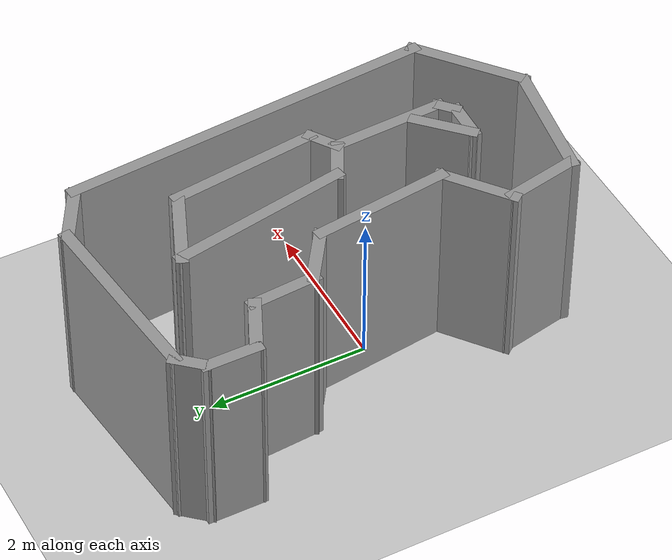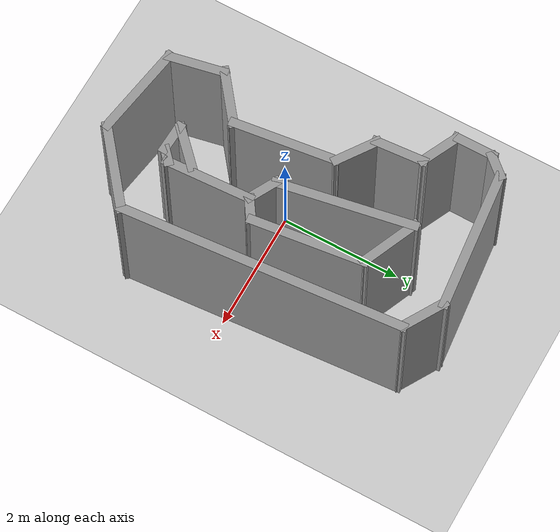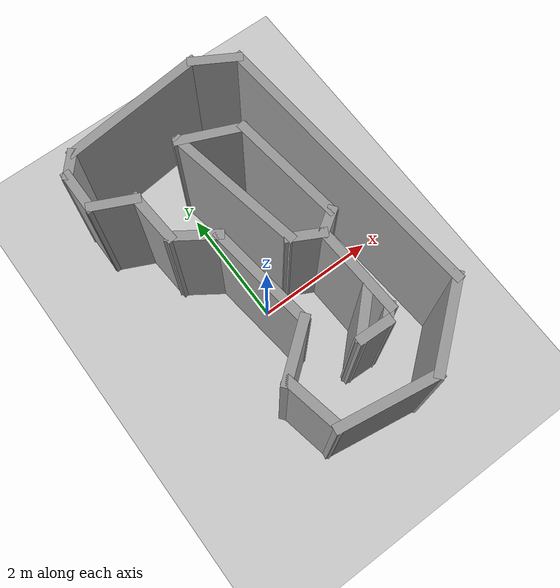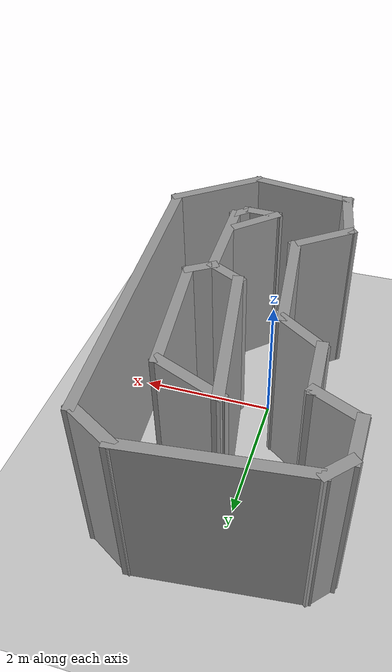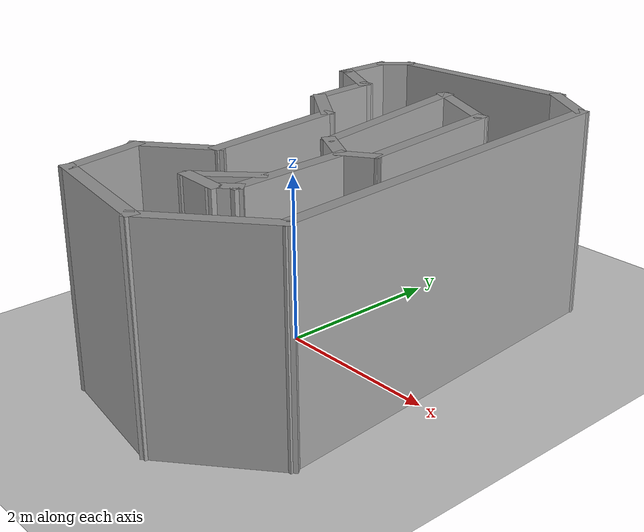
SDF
<sdf version="1.7">
 <world name="default">
  <light name="sun" type="directional">
   <pose>0 0 10 0 -0 0</pose>
   <diffuse>0.8 0.8 0.8 1</diffuse>
   <specular>0.2 0.2 0.2 1</specular>
   <attenuation>
    <range>1000</range>
    <constant>0.9</constant>
    <linear>0.01</linear>
    <quadratic>0.001</quadratic>
   </attenuation>
   <direction>-0.5 0.1 -0.9</direction>
   <spot><inner_angle>0</inner_angle><outer_angle>0</outer_angle><falloff>0</falloff></spot>
  </light>
  <model name="ground_plane">
   <static>1</static>
   <link name="link">
    <collision name="collision">
     <geometry><plane><normal>0 0 1</normal><size>100 100</size></plane></geometry>
     <surface><friction><ode><mu>100</mu><mu2>50</mu2></ode></friction></surface>
    </collision>
    <visual name="visual">
     <cast_shadows>0</cast_shadows>
     <geometry><plane><normal>0 0 1</normal><size>100 100</size></plane></geometry>
     <material>
      <script><uri>file://media/materials/scripts/gazebo.material</uri><name>Gazebo/Grey</name></script>
     </material>
    </visual>
   </link>
  </model>
  <gravity>0 0 -9.8</gravity>
  <magnetic_field>6e-06 2.3e-05 -4.2e-05</magnetic_field>
  <atmosphere type="adiabatic"/>
  <physics type="ode">
   <max_step_size>0.001</max_step_size>
   <real_time_factor>1</real_time_factor>
   <real_time_update_rate>1000</real_time_update_rate>
  </physics>
  <scene><ambient>0.4 0.4 0.4 1</ambient><background>0.7 0.7 0.7 1</background><shadows>1</shadows></scene>
  <audio><device>default</device></audio>
  <spherical_coordinates>
   <surface_model>EARTH_WGS84</surface_model>
   <latitude_deg>0</latitude_deg>
   <longitude_deg>0</longitude_deg>
   <elevation>0</elevation>
   <heading_deg>0</heading_deg>
  </spherical_coordinates>
  <model name="FInal_track">
   <pose>0.256751 0.323224 0 0 -0 0</pose>
   <link name="Wall_0">
    <collision name="Wall_0_Collision">
     <geometry><box><size>2.39491 0.15 2.5</size></box></geometry>
     <pose>0 0 1.25 0 -0 0</pose>
    </collision>
    <visual name="Wall_0_Visual">
     <pose>0 0 1.25 0 -0 0</pose>
     <geometry><box><size>2.39491 0.15 2.5</size></box></geometry>
     <material>
      <script><uri>file://media/materials/scripts/gazebo.material</uri><name>Gazebo/Grey</name></script>
      <ambient>1 1 1 1</ambient>
     </material>
     <meta><layer>0</layer></meta>
    </visual>
    <pose>-0.36939 2.79792 0 0 -0 -3.03535</pose>
   </link>
   <link name="Wall_1">
    <collision name="Wall_1_Collision">
     <geometry><box><size>0.499317 0.15 2.5</size></box></geometry>
     <pose>0 0 1.25 0 -0 0</pose>
    </collision>
    <visual name="Wall_1_Visual">
     <pose>0 0 1.25 0 -0 0</pose>
     <geometry><box><size>0.499317 0.15 2.5</size></box></geometry>
     <material>
      <script><uri>file://media/materials/scripts/gazebo.material</uri><name>Gazebo/Grey</name></script>
      <ambient>1 1 1 1</ambient>
     </material>
     <meta><layer>0</layer></meta>
    </visual>
    <pose>-1.61512 2.54866 0 0 -0 -2.30008</pose>
   </link>
   <link name="Wall_10">
    <collision name="Wall_10_Collision">
     <geometry><box><size>1.54466 0.15 2.5</size></box></geometry>
     <pose>0 0 1.25 0 -0 0</pose>
    </collision>
    <visual name="Wall_10_Visual">
     <pose>0 0 1.25 0 -0 0</pose>
     <geometry><box><size>1.54466 0.15 2.5</size></box></geometry>
     <material>
      <script><uri>file://media/materials/scripts/gazebo.material</uri><name>Gazebo/Grey</name></script>
      <ambient>1 1 1 1</ambient>
     </material>
     <meta><layer>0</layer></meta>
    </visual>
    <pose>1.19115 -2.46049 0 0 -0 0.683393</pose>
   </link>
   <link name="Wall_11">
    <collision name="Wall_11_Collision">
     <geometry><box><size>4.7362 0.15 2.5</size></box></geometry>
     <pose>0 0 1.25 0 -0 0</pose>
    </collision>
    <visual name="Wall_11_Visual">
     <pose>0 0 1.25 0 -0 0</pose>
     <geometry><box><size>4.7362 0.15 2.5</size></box></geometry>
     <material>
      <script><uri>file://media/materials/scripts/gazebo.material</uri><name>Gazebo/Grey</name></script>
      <ambient>1 1 1 1</ambient>
     </material>
     <meta><layer>0</layer></meta>
    </visual>
    <pose>1.54013 0.265958 0 0 -0 1.64873</pose>
   </link>
   <link name="Wall_12">
    <collision name="Wall_12_Collision">
     <geometry><box><size>0.846848 0.15 2.5</size></box></geometry>
     <pose>0 0 1.25 0 -0 0</pose>
    </collision>
    <visual name="Wall_12_Visual">
     <pose>0 0 1.25 0 -0 0</pose>
     <geometry><box><size>0.846848 0.15 2.5</size></box></geometry>
     <material>
      <script><uri>file://media/materials/scripts/gazebo.material</uri><name>Gazebo/Grey</name></script>
      <ambient>1 1 1 1</ambient>
     </material>
     <meta><layer>0</layer></meta>
    </visual>
    <pose>1.04755 2.72791 0 0 -0 2.61268</pose>
   </link>
   <link name="Wall_14">
    <collision name="Wall_14_Collision">
     <geometry><box><size>2.33168 0.15 2.5</size></box></geometry>
     <pose>0 0 1.25 0 -0 0</pose>
    </collision>
    <visual name="Wall_14_Visual">
     <pose>0 0 1.25 0 -0 0</pose>
     <geometry><box><size>2.33168 0.15 2.5</size></box></geometry>
     <material>
      <script><uri>file://media/materials/scripts/gazebo.material</uri><name>Gazebo/Grey</name></script>
      <ambient>1 1 1 1</ambient>
     </material>
     <meta><layer>0</layer></meta>
    </visual>
    <pose>0.039845 0.864563 0 0 -0 -1.39348</pose>
   </link>
   <link name="Wall_15">
    <collision name="Wall_15_Collision">
     <geometry><box><size>0.624093 0.15 2.5</size></box></geometry>
     <pose>0 0 1.25 0 -0 0</pose>
    </collision>
    <visual name="Wall_15_Visual">
     <pose>0 0 1.25 0 -0 0</pose>
     <geometry><box><size>0.624093 0.15 2.5</size></box></geometry>
     <material>
      <script><uri>file://media/materials/scripts/gazebo.material</uri><name>Gazebo/Grey</name></script>
      <ambient>1 1 1 1</ambient>
     </material>
     <meta><layer>0</layer></meta>
    </visual>
    <pose>0.428736 -0.31969 0 0 -0 -0.485027</pose>
   </link>
   <link name="Wall_16">
    <collision name="Wall_16_Collision">
     <geometry><box><size>1.52804 0.15 2.5</size></box></geometry>
     <pose>0 0 1.25 0 -0 0</pose>
    </collision>
    <visual name="Wall_16_Visual">
     <pose>0 0 1.25 0 -0 0</pose>
     <geometry><box><size>1.52804 0.15 2.5</size></box></geometry>
     <material>
      <script><uri>file://media/materials/scripts/gazebo.material</uri><name>Gazebo/Grey</name></script>
      <ambient>1 1 1 1</ambient>
     </material>
     <meta><layer>0</layer></meta>
    </visual>
    <pose>0.68473 -1.11843 0 0 -0 -1.52279</pose>
   </link>
   <link name="Wall_17">
    <collision name="Wall_17_Collision">
     <geometry><box><size>0.359936 0.15 2.5</size></box></geometry>
     <pose>0 0 1.25 0 -0 0</pose>
    </collision>
    <visual name="Wall_17_Visual">
     <pose>0 0 1.25 0 -0 0</pose>
     <geometry><box><size>0.359936 0.15 2.5</size></box></geometry>
     <material>
      <script><uri>file://media/materials/scripts/gazebo.material</uri><name>Gazebo/Grey</name></script>
      <ambient>1 1 1 1</ambient>
     </material>
     <meta><layer>0</layer></meta>
    </visual>
    <pose>0.640336 -1.86428 0 0 -0 -2.40075</pose>
   </link>
   <link name="Wall_19">
    <collision name="Wall_19_Collision">
     <geometry><box><size>0.585664 0.15 2.5</size></box></geometry>
     <pose>0 0 1.25 0 -0 0</pose>
    </collision>
    <visual name="Wall_19_Visual">
     <pose>0 0 1.25 0 -0 0</pose>
     <geometry><box><size>0.585664 0.15 2.5</size></box></geometry>
     <material>
      <script><uri>file://media/materials/scripts/gazebo.material</uri><name>Gazebo/Grey</name></script>
      <ambient>1 1 1 1</ambient>
     </material>
     <meta><layer>0</layer></meta>
    </visual>
    <pose>0.345201 -1.9402 0 0 -0 3.10417</pose>
   </link>
   <link name="Wall_2">
    <collision name="Wall_2_Collision">
     <geometry><box><size>0.75307 0.15 2.5</size></box></geometry>
     <pose>0 0 1.25 0 -0 0</pose>
    </collision>
    <visual name="Wall_2_Visual">
     <pose>0 0 1.25 0 -0 0</pose>
     <geometry><box><size>0.75307 0.15 2.5</size></box></geometry>
     <material>
      <script><uri>file://media/materials/scripts/gazebo.material</uri><name>Gazebo/Grey</name></script>
      <ambient>1 1 1 1</ambient>
     </material>
     <meta><layer>0</layer></meta>
    </visual>
    <pose>-1.74572 2.11714 0 0 -0 -1.5741</pose>
   </link>
   <link name="Wall_20">
    <collision name="Wall_20_Collision">
     <geometry><box><size>0.841088 0.15 2.5</size></box></geometry>
     <pose>0 0 1.25 0 -0 0</pose>
    </collision>
    <visual name="Wall_20_Visual">
     <pose>0 0 1.25 0 -0 0</pose>
     <geometry><box><size>0.841088 0.15 2.5</size></box></geometry>
     <material>
      <script><uri>file://media/materials/scripts/gazebo.material</uri><name>Gazebo/Grey</name></script>
      <ambient>1 1 1 1</ambient>
     </material>
     <meta><layer>0</layer></meta>
    </visual>
    <pose>0.375142 -1.67781 0 0 -0 0.771866</pose>
   </link>
   <link name="Wall_22">
    <collision name="Wall_22_Collision">
     <geometry><box><size>1.10505 0.15 2.5</size></box></geometry>
     <pose>0 0 1.25 0 -0 0</pose>
    </collision>
    <visual name="Wall_22_Visual">
     <pose>0 0 1.25 0 -0 0</pose>
     <geometry><box><size>1.10505 0.15 2.5</size></box></geometry>
     <material>
      <script><uri>file://media/materials/scripts/gazebo.material</uri><name>Gazebo/Grey</name></script>
      <ambient>1 1 1 1</ambient>
     </material>
     <meta><layer>0</layer></meta>
    </visual>
    <pose>0.272894 1.74966 0 0 -0 -0.406105</pose>
   </link>
   <link name="Wall_23">
    <collision name="Wall_23_Collision">
     <geometry><box><size>1.94977 0.15 2.5</size></box></geometry>
     <pose>0 0 1.25 0 -0 0</pose>
    </collision>
    <visual name="Wall_23_Visual">
     <pose>0 0 1.25 0 -0 0</pose>
     <geometry><box><size>1.94977 0.15 2.5</size></box></geometry>
     <material>
      <script><uri>file://media/materials/scripts/gazebo.material</uri><name>Gazebo/Grey</name></script>
      <ambient>1 1 1 1</ambient>
     </material>
     <meta><layer>0</layer></meta>
    </visual>
    <pose>0.831961 0.66754 0 0 -0 -1.45143</pose>
   </link>
   <link name="Wall_24">
    <collision name="Wall_24_Collision">
     <geometry><box><size>0.495146 0.15 2.5</size></box></geometry>
     <pose>0 0 1.25 0 -0 0</pose>
    </collision>
    <visual name="Wall_24_Visual">
     <pose>0 0 1.25 0 -0 0</pose>
     <geometry><box><size>0.495146 0.15 2.5</size></box></geometry>
     <material>
      <script><uri>file://media/materials/scripts/gazebo.material</uri><name>Gazebo/Grey</name></script>
      <ambient>1 1 1 1</ambient>
     </material>
     <meta><layer>0</layer></meta>
    </visual>
    <pose>0.795393 -0.334687 0 0 -0 -2.55502</pose>
   </link>
   <link name="Wall_3">
    <collision name="Wall_3_Collision">
     <geometry><box><size>0.791197 0.15 2.5</size></box></geometry>
     <pose>0 0 1.25 0 -0 0</pose>
    </collision>
    <visual name="Wall_3_Visual">
     <pose>0 0 1.25 0 -0 0</pose>
     <geometry><box><size>0.791197 0.15 2.5</size></box></geometry>
     <material>
      <script><uri>file://media/materials/scripts/gazebo.material</uri><name>Gazebo/Grey</name></script>
      <ambient>1 1 1 1</ambient>
     </material>
     <meta><layer>0</layer></meta>
    </visual>
    <pose>-1.44371 1.6787 0 0 -0 -0.442078</pose>
   </link>
   <link name="Wall_4">
    <collision name="Wall_4_Collision">
     <geometry><box><size>0.923735 0.15 2.5</size></box></geometry>
     <pose>0 0 1.25 0 -0 0</pose>
    </collision>
    <visual name="Wall_4_Visual">
     <pose>0 0 1.25 0 -0 0</pose>
     <geometry><box><size>0.923735 0.15 2.5</size></box></geometry>
     <material>
      <script><uri>file://media/materials/scripts/gazebo.material</uri><name>Gazebo/Grey</name></script>
      <ambient>1 1 1 1</ambient>
     </material>
     <meta><layer>0</layer></meta>
    </visual>
    <pose>-1.12749 1.1688 0 0 -0 -1.50237</pose>
   </link>
   <link name="Wall_5">
    <collision name="Wall_5_Collision">
     <geometry><box><size>0.844182 0.15 2.5</size></box></geometry>
     <pose>0 0 1.25 0 -0 0</pose>
    </collision>
    <visual name="Wall_5_Visual">
     <pose>0 0 1.25 0 -0 0</pose>
     <geometry><box><size>0.844182 0.15 2.5</size></box></geometry>
     <material>
      <script><uri>file://media/materials/scripts/gazebo.material</uri><name>Gazebo/Grey</name></script>
      <ambient>1 1 1 1</ambient>
     </material>
     <meta><layer>0</layer></meta>
    </visual>
    <pose>-0.814779 0.599777 0 0 -0 -0.601066</pose>
   </link>
   <link name="Wall_6">
    <collision name="Wall_6_Collision">
     <geometry><box><size>1.80376 0.15 2.5</size></box></geometry>
     <pose>0 0 1.25 0 -0 0</pose>
    </collision>
    <visual name="Wall_6_Visual">
     <pose>0 0 1.25 0 -0 0</pose>
     <geometry><box><size>1.80376 0.15 2.5</size></box></geometry>
     <material>
      <script><uri>file://media/materials/scripts/gazebo.material</uri><name>Gazebo/Grey</name></script>
      <ambient>1 1 1 1</ambient>
     </material>
     <meta><layer>0</layer></meta>
    </visual>
    <pose>-0.427976 -0.43048 0 0 -0 -1.4489</pose>
   </link>
   <link name="Wall_7">
    <collision name="Wall_7_Collision">
     <geometry><box><size>1.05231 0.15 2.5</size></box></geometry>
     <pose>0 0 1.25 0 -0 0</pose>
    </collision>
    <visual name="Wall_7_Visual">
     <pose>0 0 1.25 0 -0 0</pose>
     <geometry><box><size>1.05231 0.15 2.5</size></box></geometry>
     <material>
      <script><uri>file://media/materials/scripts/gazebo.material</uri><name>Gazebo/Grey</name></script>
      <ambient>1 1 1 1</ambient>
     </material>
     <meta><layer>0</layer></meta>
    </visual>
    <pose>-0.669042 -1.52985 0 0 -0 -2.47593</pose>
   </link>
   <link name="Wall_8">
    <collision name="Wall_8_Collision">
     <geometry><box><size>1.03018 0.15 2.5</size></box></geometry>
     <pose>0 0 1.25 0 -0 0</pose>
    </collision>
    <visual name="Wall_8_Visual">
     <pose>0 0 1.25 0 -0 0</pose>
     <geometry><box><size>1.03018 0.15 2.5</size></box></geometry>
     <material>
      <script><uri>file://media/materials/scripts/gazebo.material</uri><name>Gazebo/Grey</name></script>
      <ambient>1 1 1 1</ambient>
     </material>
     <meta><layer>0</layer></meta>
    </visual>
    <pose>-0.911465 -2.24009 0 0 -0 -1.3742</pose>
   </link>
   <link name="Wall_9">
    <collision name="Wall_9_Collision">
     <geometry><box><size>1.6436 0.15 2.5</size></box></geometry>
     <pose>0 0 1.25 0 -0 0</pose>
    </collision>
    <visual name="Wall_9_Visual">
     <pose>0 0 1.25 0 -0 0</pose>
     <geometry><box><size>1.6436 0.15 2.5</size></box></geometry>
     <material>
      <script><uri>file://media/materials/scripts/gazebo.material</uri><name>Gazebo/Grey</name></script>
      <ambient>1 1 1 1</ambient>
     </material>
     <meta><layer>0</layer></meta>
    </visual>
    <pose>-0.100765 -2.78625 0 0 -0 -0.153999</pose>
   </link>
   <static>1</static>
  </model>
 </world>
</sdf>
